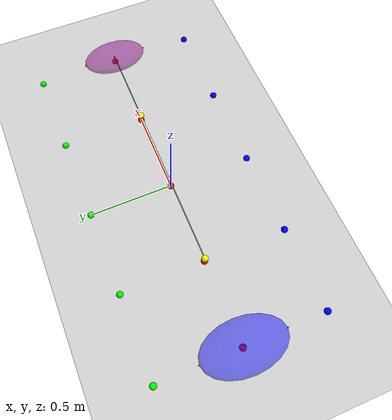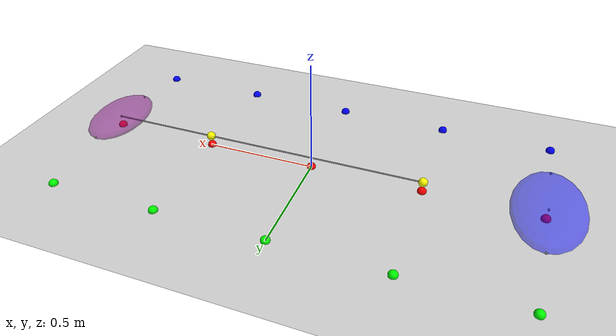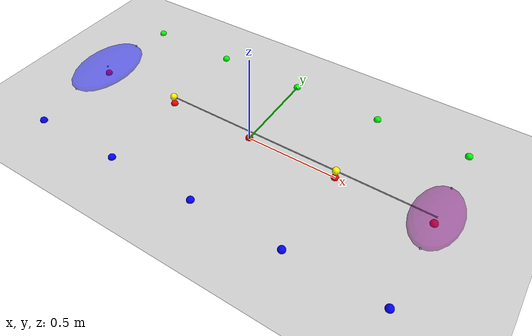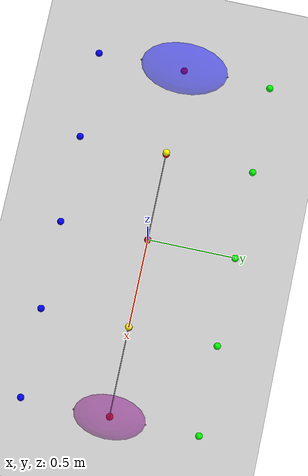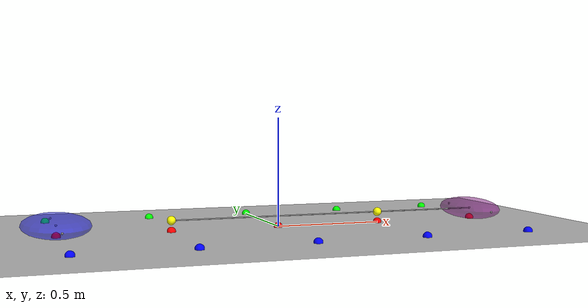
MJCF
<mujoco>
  <compiler angle="degree"/>
  <option timestep="0.01" gravity="0 0 -9.81" integrator="RK4"/>

  <worldbody>
    <!-- Ground Plane -->
    <geom name="floor" type="plane" size="10 10 0.1" rgba="0.8 0.8 0.8 1"/>

    <!-- Lead Dancer -->
    <body name="lead" pos="-1 0 0.05" euler="0 0 0.0">
      <!-- Ellipsoid for Lead Dancer with Transparency -->
      <geom name="lead_geom" type="ellipsoid" size="0.15 0.25 0.05" rgba="0 0 1 0.5" density="850"/>

      <!-- Slider joint allowing translation along X-axis -->
      <joint name="lead_slide_x" type="slide" axis="1 0 0" pos="0 0 0.05" limited="true" range="0.0 2.0" damping="0.01"/>

      <!-- Slider joint allowing translation along Y-axis -->
      <joint name="lead_slide_y" type="slide" axis="0 1 0" pos="0 0 0.05" limited="true" range="-0.5 0.5" damping="0.01"/>

      <!-- Hinge joint allowing rotation around Z-axis with range of ±180° -->
      <joint name="lead_hinge_z" type="hinge" axis="0 0 1" pos="0 0 0.05" stiffness="2" damping=".1"/>

      <!-- Sites for Lead Dancer -->
      <site name="lead_cg" pos="0 0 0.0"/>
      <site name="lead_left_shoulder" pos="0 -0.25 0.0"/>
      <site name="lead_right_shoulder" pos="0 0.25 0.0"/>
      <site name="lead_nose" pos="0.5 0 0.0" size="0.02" rgba="1 1 0 1"/> <!-- Nose site -->

    </body>

    <!-- Follow Dancer -->
    <body name="follow" pos="1 0 0.05" euler="0 0 180.0">
      <!-- Ellipsoid for Follow Dancer with Transparency -->
      <geom name="follow_geom" type="ellipsoid" size="0.12 0.20 0.05" rgba="0.5 0 0.5 0.5" density="650"/>

      <!-- Slider joint allowing translation along X-axis -->
      <joint name="follow_slide_x" type="slide" axis="1 0 0" pos="0 0 0.05" limited="true" range="0.0 2.0" damping="0.01"/>

      <!-- Slider joint allowing translation along Y-axis -->
      <joint name="follow_slide_y" type="slide" axis="0 1 0" pos="0 0 0.05" limited="true" range="-0.5 0.5" damping="0.01"/>

      <!-- Hinge joint allowing rotation around Z-axis (no range for follow dancer) -->
      <joint name="follow_hinge_z" type="hinge" axis="0 0 1" pos="0 0 0.05" damping="0.05"/>

      <!-- Sites for Follow Dancer -->
      <site name="follow_cg" pos="0 0 0.0"/>
      <site name="follow_left_shoulder" pos="0 -0.2 0.0"/>
      <site name="follow_right_shoulder" pos="0 0.2 0.0"/>
      <site name="follow_nose" pos="0.5 0 0.0" size="0.02" rgba="1 1 0 1"/> <!-- Nose site -->

    </body>

    <!-- Salsa Coordinate Grid -->
    <site name="slot1" pos="-1.0 0 0.001" size="0.02" rgba="1 0 0 1"/>
    <site name="slot2" pos="-0.5 0 0.001" size="0.02" rgba="1 0 0 1"/>
    <site name="slot3" pos="0.0 0 0.001" size="0.02" rgba="1 0 0 1"/>
    <site name="slot4" pos="0.5 0 0.001" size="0.02" rgba="1 0 0 1"/>
    <site name="slot5" pos="1.0 0 0.001" size="0.02" rgba="1 0 0 1"/>

    <!-- Left Rail -->
    <site name="left1" pos="-1.0 -0.5 0.001" size="0.02" rgba="0 0 1 1"/>
    <site name="left2" pos="-0.5 -0.5 0.001" size="0.02" rgba="0 0 1 1"/>
    <site name="left3" pos="0.0 -0.5 0.001" size="0.02" rgba="0 0 1 1"/>
    <site name="left4" pos="0.5 -0.5 0.001" size="0.02" rgba="0 0 1 1"/>
    <site name="left5" pos="1.0 -0.5 0.001" size="0.02" rgba="0 0 1 1"/>

    <!-- Right Rail -->
    <site name="right1" pos="-1.0 0.5 0.001" size="0.02" rgba="0 1 0 1"/>
    <site name="right2" pos="-0.5 0.5 0.001" size="0.02" rgba="0 1 0 1"/>
    <site name="right3" pos="0.0 0.5 0.001" size="0.02" rgba="0 1 0 1"/>
    <site name="right4" pos="0.5 0.5 0.001" size="0.02" rgba="0 1 0 1"/>
    <site name="right5" pos="1.0 0.5 0.001" size="0.02" rgba="0 1 0 1"/>
  </worldbody>

  <actuator>
    <!-- General Force Actuators for Lead -->
    <general name="lead_forward_force" site="lead_cg" ctrllimited="true" ctrlrange="-10 10" forcelimited="true" forcerange="-10 10" gear="1 0 0 0 0 0"/>
    <general name="lead_lateral_force" site="lead_cg" ctrllimited="true" ctrlrange="-10 10" forcelimited="true" forcerange="-10 10" gear="0 1 0 0 0 0"/>
    <general name="lead_moment" site="lead_cg" ctrllimited="true" ctrlrange="-2 2" forcelimited="true" forcerange="-2 2" gear="0 0 0 0 0 1"/>

    <!-- General Force Actuators for Follow -->
    <general name="follow_forward_force" site="follow_cg" ctrllimited="true" ctrlrange="-10 10" forcelimited="true" forcerange="-10 10" gear="1 0 0 0 0 0"/>
    <general name="follow_lateral_force" site="follow_cg" ctrllimited="true" ctrlrange="-10 10" forcelimited="true" forcerange="-10 10" gear="0 1 0 0 0 0"/>
    <general name="follow_moment" site="follow_cg" ctrllimited="true" ctrlrange="-2 2" forcelimited="true" forcerange="-2 2" gear="0 0 0 0 0 1"/>
  </actuator>

  <!-- Tendon Elements: Representing Elastic String/ Rubber Band Between Lead and Follow -->
  <tendon>
      <spatial name="alignment_spring" springlength="0" stiffness="10" damping="3">
          <site site="lead_nose"/>
          <site site="follow_cg"/>
      </spatial>
  </tendon>

</mujoco>

<key qpos='-1.25553e-10 0.424585 0.0499978 1 -6.30484e-05 5.8393e-12 -1.00223e-06 8.18356e-09 1.17528 0.0499978 1 0.000227857 2.27094e-10 1.89271e-06'/>
